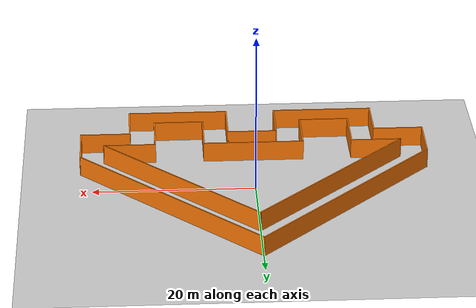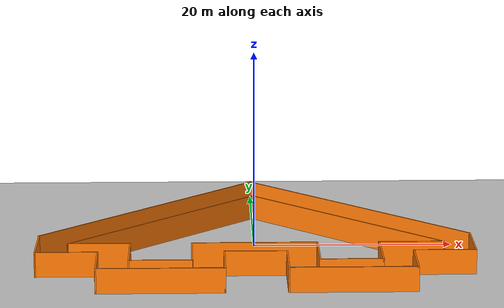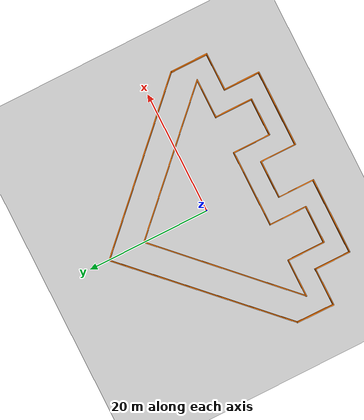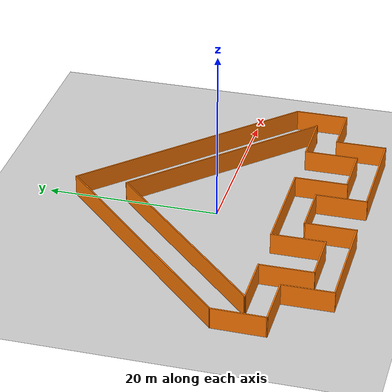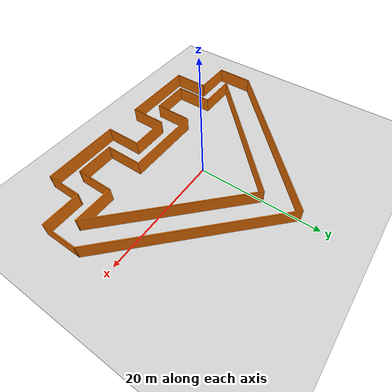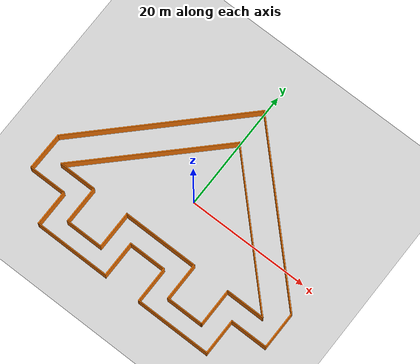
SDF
<sdf version="1.6">
 <world name="default">
  <light name="sun" type="directional">
   <pose>0 0 10 0 -0 0</pose>
   <diffuse>0.8 0.8 0.8 1</diffuse>
   <specular>0.1 0.1 0.1 1</specular>
   <attenuation>
    <range>1000</range>
    <constant>0.9</constant>
    <linear>0.01</linear>
    <quadratic>0.001</quadratic>
   </attenuation>
   <direction>-0.5 0.5 -1</direction>
  </light>
  <model name="ground_plane">
   <static>1</static>
   <link name="link">
    <collision name="collision">
     <geometry><plane><normal>0 0 1</normal><size>100 100</size></plane></geometry>
     <surface><friction><ode><mu>100</mu><mu2>50</mu2></ode></friction></surface>
    </collision>
    <visual name="visual">
     <cast_shadows>0</cast_shadows>
     <geometry><plane><normal>0 0 1</normal><size>100 100</size></plane></geometry>
     <material>
      <script><uri>file://media/materials/scripts/gazebo.material</uri><name>Gazebo/Grey</name></script>
     </material>
    </visual>
   </link>
  </model>
  <gravity>0 0 -9.8</gravity>
  <magnetic_field>6e-06 2.3e-05 -4.2e-05</magnetic_field>
  <atmosphere type="adiabatic"/>
  <physics name="default_physics" default="0" type="ode">
   <max_step_size>0.001</max_step_size>
   <real_time_factor>1</real_time_factor>
   <real_time_update_rate>0.0</real_time_update_rate>
  </physics>
  <scene><ambient>0.4 0.4 0.4 1</ambient><background>0.7 0.7 0.7 1</background><shadows>1</shadows></scene>
  <spherical_coordinates>
   <surface_model>EARTH_WGS84</surface_model>
   <latitude_deg>0</latitude_deg>
   <longitude_deg>0</longitude_deg>
   <elevation>0</elevation>
   <heading_deg>0</heading_deg>
  </spherical_coordinates>
  <model name="track3">
   <pose>-0.067188 0.068667 0 0 -0 0</pose>
   <link name="Wall_0">
    <collision name="Wall_0_Collision">
     <geometry><box><size>6.25 0.15 2.5</size></box></geometry>
     <pose>0 0 1.25 0 -0 0</pose>
    </collision>
    <visual name="Wall_0_Visual">
     <pose>0 0 1.25 0 -0 0</pose>
     <geometry><box><size>6.25 0.15 2.5</size></box></geometry>
     <material>
      <script><uri>file://media/materials/scripts/gazebo.material</uri><name>Gazebo/Grey</name></script>
      <ambient>0.996078 0.47451 0.0196078 1</ambient>
     </material>
    </visual>
    <pose>-18.4651 -10.8709 0 0 -0 0</pose>
   </link>
   <link name="Wall_1">
    <collision name="Wall_1_Collision">
     <geometry><box><size>6 0.15 2.5</size></box></geometry>
     <pose>0 0 1.25 0 -0 0</pose>
    </collision>
    <visual name="Wall_1_Visual">
     <pose>0 0 1.25 0 -0 0</pose>
     <geometry><box><size>6 0.15 2.5</size></box></geometry>
     <material>
      <script><uri>file://media/materials/scripts/gazebo.material</uri><name>Gazebo/Grey</name></script>
      <ambient>0.996078 0.47451 0.0196078 1</ambient>
     </material>
    </visual>
    <pose>-15.4151 -13.7959 0 0 0 -1.5708</pose>
   </link>
   <link name="Wall_16">
    <collision name="Wall_16_Collision">
     <geometry><box><size>6 0.15 2.5</size></box></geometry>
     <pose>0 0 1.25 0 -0 0</pose>
    </collision>
    <visual name="Wall_16_Visual">
     <pose>0 0 1.25 0 -0 0</pose>
     <geometry><box><size>6 0.15 2.5</size></box></geometry>
     <material>
      <script><uri>file://media/materials/scripts/gazebo.material</uri><name>Gazebo/Grey</name></script>
      <ambient>0.996078 0.47451 0.0196078 1</ambient>
     </material>
    </visual>
    <pose>15.3849 -13.7959 0 0 -0 1.5708</pose>
   </link>
   <link name="Wall_17">
    <collision name="Wall_17_Collision">
     <geometry><box><size>6.25 0.15 2.5</size></box></geometry>
     <pose>0 0 1.25 0 -0 0</pose>
    </collision>
    <visual name="Wall_17_Visual">
     <pose>0 0 1.25 0 -0 0</pose>
     <geometry><box><size>6.25 0.15 2.5</size></box></geometry>
     <material>
      <script><uri>file://media/materials/scripts/gazebo.material</uri><name>Gazebo/Grey</name></script>
      <ambient>0.996078 0.47451 0.0196078 1</ambient>
     </material>
    </visual>
    <pose>18.4349 -10.8709 0 0 -0 0</pose>
   </link>
   <link name="Wall_18">
    <collision name="Wall_18_Collision">
     <geometry><box><size>6.25 0.15 2.5</size></box></geometry>
     <pose>0 0 1.25 0 -0 0</pose>
    </collision>
    <visual name="Wall_18_Visual">
     <pose>0 0 1.25 0 -0 0</pose>
     <geometry><box><size>6.25 0.15 2.5</size></box></geometry>
     <material>
      <script><uri>file://media/materials/scripts/gazebo.material</uri><name>Gazebo/Grey</name></script>
      <ambient>0.996078 0.47451 0.0196078 1</ambient>
     </material>
    </visual>
    <pose>21.4849 -7.82088 0 0 -0 1.5708</pose>
   </link>
   <link name="Wall_19">
    <collision name="Wall_19_Collision">
     <geometry><box><size>30.5 0.15 2.5</size></box></geometry>
     <pose>0 0 1.25 0 -0 0</pose>
    </collision>
    <visual name="Wall_19_Visual">
     <pose>0 0 1.25 0 -0 0</pose>
     <geometry><box><size>30.5 0.15 2.5</size></box></geometry>
     <material>
      <script><uri>file://media/materials/scripts/gazebo.material</uri><name>Gazebo/Grey</name></script>
      <ambient>0.996078 0.47451 0.0196078 1</ambient>
     </material>
    </visual>
    <pose>10.7546 5.95947 0 0 -0 2.35619</pose>
   </link>
   <link name="Wall_2">
    <collision name="Wall_2_Collision">
     <geometry><box><size>12.5 0.15 2.5</size></box></geometry>
     <pose>0 0 1.25 0 -0 0</pose>
    </collision>
    <visual name="Wall_2_Visual">
     <pose>0 0 1.25 0 -0 0</pose>
     <geometry><box><size>12.5 0.15 2.5</size></box></geometry>
     <material>
      <script><uri>file://media/materials/scripts/gazebo.material</uri><name>Gazebo/Grey</name></script>
      <ambient>0.996078 0.47451 0.0196078 1</ambient>
     </material>
    </visual>
    <pose>-9.24005 -16.7209 0 0 -0 0</pose>
   </link>
   <link name="Wall_20">
    <collision name="Wall_20_Collision">
     <geometry><box><size>30.5 0.15 2.5</size></box></geometry>
     <pose>0 0 1.25 0 -0 0</pose>
    </collision>
    <visual name="Wall_20_Visual">
     <pose>0 0 1.25 0 -0 0</pose>
     <geometry><box><size>30.5 0.15 2.5</size></box></geometry>
     <material>
      <script><uri>file://media/materials/scripts/gazebo.material</uri><name>Gazebo/Grey</name></script>
      <ambient>0.996078 0.47451 0.0196078 1</ambient>
     </material>
    </visual>
    <pose>-10.7061 5.95947 0 0 0 -2.35619</pose>
   </link>
   <link name="Wall_22">
    <collision name="Wall_22_Collision">
     <geometry><box><size>6.25051 0.15 2.5</size></box></geometry>
     <pose>0 0 1.25 0 -0 0</pose>
    </collision>
    <visual name="Wall_22_Visual">
     <pose>0 0 1.25 0 -0 0</pose>
     <geometry><box><size>6.25051 0.15 2.5</size></box></geometry>
     <material>
      <script><uri>file://media/materials/scripts/gazebo.material</uri><name>Gazebo/Grey</name></script>
      <ambient>0.996078 0.47451 0.0196078 1</ambient>
     </material>
    </visual>
    <pose>-21.4757 -7.82088 0 0 0 -1.58368</pose>
   </link>
   <link name="Wall_26">
    <collision name="Wall_26_Collision">
     <geometry><box><size>6.25 0.15 2.5</size></box></geometry>
     <pose>0 0 1.25 0 -0 0</pose>
    </collision>
    <visual name="Wall_26_Visual">
     <pose>0 0 1.25 0 -0 0</pose>
     <geometry><box><size>6.25 0.15 2.5</size></box></geometry>
     <material>
      <script><uri>file://media/materials/scripts/gazebo.material</uri><name>Gazebo/Grey</name></script>
      <ambient>0.996078 0.47451 0.0196078 1</ambient>
     </material>
    </visual>
    <pose>-15.3728 -7.77207 0 0 -0 0</pose>
   </link>
   <link name="Wall_29">
    <collision name="Wall_29_Collision">
     <geometry><box><size>6.25 0.15 2.5</size></box></geometry>
     <pose>0 0 1.25 0 -0 0</pose>
    </collision>
    <visual name="Wall_29_Visual">
     <pose>0 0 1.25 0 -0 0</pose>
     <geometry><box><size>6.25 0.15 2.5</size></box></geometry>
     <material>
      <script><uri>file://media/materials/scripts/gazebo.material</uri><name>Gazebo/Grey</name></script>
      <ambient>0.996078 0.47451 0.0196078 1</ambient>
     </material>
    </visual>
    <pose>-12.3228 -10.8221 0 0 0 -1.5708</pose>
   </link>
   <link name="Wall_3">
    <collision name="Wall_3_Collision">
     <geometry><box><size>6 0.15 2.5</size></box></geometry>
     <pose>0 0 1.25 0 -0 0</pose>
    </collision>
    <visual name="Wall_3_Visual">
     <pose>0 0 1.25 0 -0 0</pose>
     <geometry><box><size>6 0.15 2.5</size></box></geometry>
     <material>
      <script><uri>file://media/materials/scripts/gazebo.material</uri><name>Gazebo/Grey</name></script>
      <ambient>0.996078 0.47451 0.0196078 1</ambient>
     </material>
    </visual>
    <pose>-3.06505 -13.7959 0 0 -0 1.5708</pose>
   </link>
   <link name="Wall_30">
    <collision name="Wall_30_Collision">
     <geometry><box><size>6.25 0.15 2.5</size></box></geometry>
     <pose>0 0 1.25 0 -0 0</pose>
    </collision>
    <visual name="Wall_30_Visual">
     <pose>0 0 1.25 0 -0 0</pose>
     <geometry><box><size>6.25 0.15 2.5</size></box></geometry>
     <material>
      <script><uri>file://media/materials/scripts/gazebo.material</uri><name>Gazebo/Grey</name></script>
      <ambient>0.996078 0.47451 0.0196078 1</ambient>
     </material>
    </visual>
    <pose>-9.27279 -13.8721 0 0 -0 0</pose>
   </link>
   <link name="Wall_31">
    <collision name="Wall_31_Collision">
     <geometry><box><size>6.25 0.15 2.5</size></box></geometry>
     <pose>0 0 1.25 0 -0 0</pose>
    </collision>
    <visual name="Wall_31_Visual">
     <pose>0 0 1.25 0 -0 0</pose>
     <geometry><box><size>6.25 0.15 2.5</size></box></geometry>
     <material>
      <script><uri>file://media/materials/scripts/gazebo.material</uri><name>Gazebo/Grey</name></script>
      <ambient>0.996078 0.47451 0.0196078 1</ambient>
     </material>
    </visual>
    <pose>-6.22279 -10.8221 0 0 -0 1.5708</pose>
   </link>
   <link name="Wall_32">
    <collision name="Wall_32_Collision">
     <geometry><box><size>12.5 0.15 2.5</size></box></geometry>
     <pose>0 0 1.25 0 -0 0</pose>
    </collision>
    <visual name="Wall_32_Visual">
     <pose>0 0 1.25 0 -0 0</pose>
     <geometry><box><size>12.5 0.15 2.5</size></box></geometry>
     <material>
      <script><uri>file://media/materials/scripts/gazebo.material</uri><name>Gazebo/Grey</name></script>
      <ambient>0.996078 0.47451 0.0196078 1</ambient>
     </material>
    </visual>
    <pose>-0.047785 -7.77207 0 0 -0 0</pose>
   </link>
   <link name="Wall_33">
    <collision name="Wall_33_Collision">
     <geometry><box><size>6.25 0.15 2.5</size></box></geometry>
     <pose>0 0 1.25 0 -0 0</pose>
    </collision>
    <visual name="Wall_33_Visual">
     <pose>0 0 1.25 0 -0 0</pose>
     <geometry><box><size>6.25 0.15 2.5</size></box></geometry>
     <material>
      <script><uri>file://media/materials/scripts/gazebo.material</uri><name>Gazebo/Grey</name></script>
      <ambient>0.996078 0.47451 0.0196078 1</ambient>
     </material>
    </visual>
    <pose>6.12721 -10.8221 0 0 0 -1.5708</pose>
   </link>
   <link name="Wall_34">
    <collision name="Wall_34_Collision">
     <geometry><box><size>6.25 0.15 2.5</size></box></geometry>
     <pose>0 0 1.25 0 -0 0</pose>
    </collision>
    <visual name="Wall_34_Visual">
     <pose>0 0 1.25 0 -0 0</pose>
     <geometry><box><size>6.25 0.15 2.5</size></box></geometry>
     <material>
      <script><uri>file://media/materials/scripts/gazebo.material</uri><name>Gazebo/Grey</name></script>
      <ambient>0.996078 0.47451 0.0196078 1</ambient>
     </material>
    </visual>
    <pose>9.17722 -13.8721 0 0 -0 0</pose>
   </link>
   <link name="Wall_35">
    <collision name="Wall_35_Collision">
     <geometry><box><size>6.25 0.15 2.5</size></box></geometry>
     <pose>0 0 1.25 0 -0 0</pose>
    </collision>
    <visual name="Wall_35_Visual">
     <pose>0 0 1.25 0 -0 0</pose>
     <geometry><box><size>6.25 0.15 2.5</size></box></geometry>
     <material>
      <script><uri>file://media/materials/scripts/gazebo.material</uri><name>Gazebo/Grey</name></script>
      <ambient>0.996078 0.47451 0.0196078 1</ambient>
     </material>
    </visual>
    <pose>12.2272 -10.8221 0 0 -0 1.5708</pose>
   </link>
   <link name="Wall_36">
    <collision name="Wall_36_Collision">
     <geometry><box><size>6.5 0.15 2.5</size></box></geometry>
     <pose>0 0 1.25 0 -0 0</pose>
    </collision>
    <visual name="Wall_36_Visual">
     <pose>0 0 1.25 0 -0 0</pose>
     <geometry><box><size>6.5 0.15 2.5</size></box></geometry>
     <material>
      <script><uri>file://media/materials/scripts/gazebo.material</uri><name>Gazebo/Grey</name></script>
      <ambient>0.996078 0.47451 0.0196078 1</ambient>
     </material>
    </visual>
    <pose>15.4022 -7.77207 0 0 -0 0</pose>
   </link>
   <link name="Wall_37">
    <collision name="Wall_37_Collision">
     <geometry><box><size>26.25 0.15 2.5</size></box></geometry>
     <pose>0 0 1.25 0 -0 0</pose>
    </collision>
    <visual name="Wall_37_Visual">
     <pose>0 0 1.25 0 -0 0</pose>
     <geometry><box><size>26.25 0.15 2.5</size></box></geometry>
     <material>
      <script><uri>file://media/materials/scripts/gazebo.material</uri><name>Gazebo/Grey</name></script>
      <ambient>0.996078 0.47451 0.0196078 1</ambient>
     </material>
    </visual>
    <pose>9.34947 1.45568 0 0 -0 2.35619</pose>
   </link>
   <link name="Wall_38">
    <collision name="Wall_38_Collision">
     <geometry><box><size>26.313 0.15 2.5</size></box></geometry>
     <pose>0 0 1.25 0 -0 0</pose>
    </collision>
    <visual name="Wall_38_Visual">
     <pose>0 0 1.25 0 -0 0</pose>
     <geometry><box><size>26.313 0.15 2.5</size></box></geometry>
     <material>
      <script><uri>file://media/materials/scripts/gazebo.material</uri><name>Gazebo/Grey</name></script>
      <ambient>0.996078 0.47451 0.0196078 1</ambient>
     </material>
    </visual>
    <pose>-9.15053 1.45568 0 0 0 -2.3586</pose>
   </link>
   <link name="Wall_4">
    <collision name="Wall_4_Collision">
     <geometry><box><size>6.25 0.15 2.5</size></box></geometry>
     <pose>0 0 1.25 0 -0 0</pose>
    </collision>
    <visual name="Wall_4_Visual">
     <pose>0 0 1.25 0 -0 0</pose>
     <geometry><box><size>6.25 0.15 2.5</size></box></geometry>
     <material>
      <script><uri>file://media/materials/scripts/gazebo.material</uri><name>Gazebo/Grey</name></script>
      <ambient>0.996078 0.47451 0.0196078 1</ambient>
     </material>
    </visual>
    <pose>-0.015054 -10.8709 0 0 -0 0</pose>
   </link>
   <link name="Wall_5">
    <collision name="Wall_5_Collision">
     <geometry><box><size>6 0.15 2.5</size></box></geometry>
     <pose>0 0 1.25 0 -0 0</pose>
    </collision>
    <visual name="Wall_5_Visual">
     <pose>0 0 1.25 0 -0 0</pose>
     <geometry><box><size>6 0.15 2.5</size></box></geometry>
     <material>
      <script><uri>file://media/materials/scripts/gazebo.material</uri><name>Gazebo/Grey</name></script>
      <ambient>0.996078 0.47451 0.0196078 1</ambient>
     </material>
    </visual>
    <pose>3.03495 -13.7959 0 0 0 -1.5708</pose>
   </link>
   <link name="Wall_8">
    <collision name="Wall_8_Collision">
     <geometry><box><size>12.5 0.15 2.5</size></box></geometry>
     <pose>0 0 1.25 0 -0 0</pose>
    </collision>
    <visual name="Wall_8_Visual">
     <pose>0 0 1.25 0 -0 0</pose>
     <geometry><box><size>12.5 0.15 2.5</size></box></geometry>
     <material>
      <script><uri>file://media/materials/scripts/gazebo.material</uri><name>Gazebo/Grey</name></script>
      <ambient>0.996078 0.47451 0.0196078 1</ambient>
     </material>
    </visual>
    <pose>9.20995 -16.7209 0 0 -0 0</pose>
   </link>
   <static>1</static>
  </model>
 </world>
</sdf>
